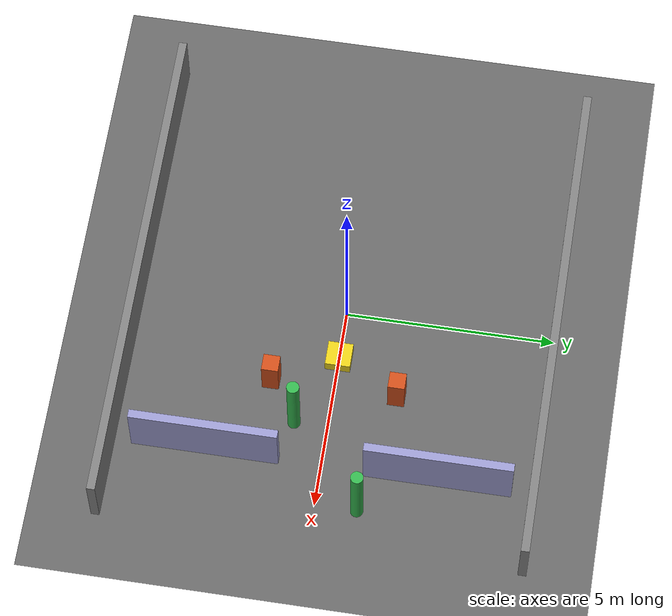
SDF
<?xml version="1.0" ?>
<sdf version="1.8">
  <world name="obstacle_world">

    <!-- Physics -->
    <physics name="1ms" type="ignored">
      <max_step_size>0.001</max_step_size>
      <real_time_factor>1.0</real_time_factor>
    </physics>

    <!-- Required Ignition plugins -->
    <plugin filename="ignition-gazebo-physics-system"
            name="ignition::gazebo::systems::Physics"/>
    <plugin filename="ignition-gazebo-user-commands-system"
            name="ignition::gazebo::systems::UserCommands"/>
    <plugin filename="ignition-gazebo-scene-broadcaster-system"
            name="ignition::gazebo::systems::SceneBroadcaster"/>
    <plugin filename="ignition-gazebo-sensors-system"
            name="ignition::gazebo::systems::Sensors">
      <render_engine>ogre2</render_engine>
    </plugin>

    <!-- Lighting -->
    <light type="directional" name="sun">
      <cast_shadows>true</cast_shadows>
      <pose>0 0 10 0 0 0</pose>
      <diffuse>0.8 0.8 0.8 1</diffuse>
      <specular>0.2 0.2 0.2 1</specular>
      <direction>-0.5 0.1 -0.9</direction>
    </light>

    <!-- Ground plane -->
    <model name="ground_plane">
      <static>true</static>
      <link name="link">
        <collision name="collision">
          <geometry>
            <plane>
              <normal>0 0 1</normal>
              <size>20 20</size>
            </plane>
          </geometry>
          <surface>
            <friction>
              <ode>
                <mu>1.0</mu>
                <mu2>1.0</mu2>
              </ode>
            </friction>
          </surface>
        </collision>
        <visual name="visual">
          <geometry>
            <plane>
              <normal>0 0 1</normal>
              <size>20 20</size>
            </plane>
          </geometry>
          <material>
            <ambient>0.4 0.4 0.4 1</ambient>
            <diffuse>0.4 0.4 0.4 1</diffuse>
          </material>
        </visual>
      </link>
    </model>

    <!-- ==================== OBSTACLES ==================== -->

    <!-- Box 1: 前方 2m 处，宽走廊右墙 -->
    <model name="box_1">
      <static>true</static>
      <pose>2.0 1.5 0.5 0 0 0</pose>
      <link name="link">
        <collision name="collision">
          <geometry><box><size>0.4 0.4 1.0</size></box></geometry>
        </collision>
        <visual name="visual">
          <geometry><box><size>0.4 0.4 1.0</size></box></geometry>
          <material>
            <ambient>0.8 0.3 0.1 1</ambient>
            <diffuse>0.8 0.3 0.1 1</diffuse>
          </material>
        </visual>
      </link>
    </model>

    <!-- Box 2: 前方 2m 处，走廊左侧 -->
    <model name="box_2">
      <static>true</static>
      <pose>2.0 -1.5 0.5 0 0 0</pose>
      <link name="link">
        <collision name="collision">
          <geometry><box><size>0.4 0.4 1.0</size></box></geometry>
        </collision>
        <visual name="visual">
          <geometry><box><size>0.4 0.4 1.0</size></box></geometry>
          <material>
            <ambient>0.8 0.3 0.1 1</ambient>
            <diffuse>0.8 0.3 0.1 1</diffuse>
          </material>
        </visual>
      </link>
    </model>

    <!-- Wall: 前方 4m 处横墙，中间留 1m 缺口 -->
    <model name="wall_front_left">
      <static>true</static>
      <pose>4.0 2.75 0.75 0 0 0</pose>
      <link name="link">
        <collision name="collision">
          <geometry><box><size>0.2 3.5 1.5</size></box></geometry>
        </collision>
        <visual name="visual">
          <geometry><box><size>0.2 3.5 1.5</size></box></geometry>
          <material>
            <ambient>0.6 0.6 0.8 1</ambient>
            <diffuse>0.6 0.6 0.8 1</diffuse>
          </material>
        </visual>
      </link>
    </model>

    <model name="wall_front_right">
      <static>true</static>
      <pose>4.0 -2.75 0.75 0 0 0</pose>
      <link name="link">
        <collision name="collision">
          <geometry><box><size>0.2 3.5 1.5</size></box></geometry>
        </collision>
        <visual name="visual">
          <geometry><box><size>0.2 3.5 1.5</size></box></geometry>
          <material>
            <ambient>0.6 0.6 0.8 1</ambient>
            <diffuse>0.6 0.6 0.8 1</diffuse>
          </material>
        </visual>
      </link>
    </model>

    <!-- Cylinder pillar: 右前方 3m -->
    <model name="pillar_1">
      <static>true</static>
      <pose>3.0 -0.8 1.0 0 0 0</pose>
      <link name="link">
        <collision name="collision">
          <geometry><cylinder><radius>0.15</radius><length>2.0</length></cylinder></geometry>
        </collision>
        <visual name="visual">
          <geometry><cylinder><radius>0.15</radius><length>2.0</length></cylinder></geometry>
          <material>
            <ambient>0.2 0.7 0.3 1</ambient>
            <diffuse>0.2 0.7 0.3 1</diffuse>
          </material>
        </visual>
      </link>
    </model>

    <!-- Cylinder pillar: 左前方 5m -->
    <model name="pillar_2">
      <static>true</static>
      <pose>5.0 1.0 1.0 0 0 0</pose>
      <link name="link">
        <collision name="collision">
          <geometry><cylinder><radius>0.15</radius><length>2.0</length></cylinder></geometry>
        </collision>
        <visual name="visual">
          <geometry><cylinder><radius>0.15</radius><length>2.0</length></cylinder></geometry>
          <material>
            <ambient>0.2 0.7 0.3 1</ambient>
            <diffuse>0.2 0.7 0.3 1</diffuse>
          </material>
        </visual>
      </link>
    </model>

    <!-- Low obstacle: 近处低矮障碍，测试避障 -->
    <model name="low_box">
      <static>true</static>
      <pose>1.2 0.0 0.15 0 0 0</pose>
      <link name="link">
        <collision name="collision">
          <geometry><box><size>0.6 0.6 0.3</size></box></geometry>
        </collision>
        <visual name="visual">
          <geometry><box><size>0.6 0.6 0.3</size></box></geometry>
          <material>
            <ambient>0.9 0.8 0.1 1</ambient>
            <diffuse>0.9 0.8 0.1 1</diffuse>
          </material>
        </visual>
      </link>
    </model>

    <!-- Side wall left -->
    <model name="wall_left">
      <static>true</static>
      <pose>0.0 5.0 0.75 0 0 0</pose>
      <link name="link">
        <collision name="collision">
          <geometry><box><size>12.0 0.2 1.5</size></box></geometry>
        </collision>
        <visual name="visual">
          <geometry><box><size>12.0 0.2 1.5</size></box></geometry>
          <material>
            <ambient>0.5 0.5 0.5 1</ambient>
            <diffuse>0.5 0.5 0.5 1</diffuse>
          </material>
        </visual>
      </link>
    </model>

    <!-- Side wall right -->
    <model name="wall_right">
      <static>true</static>
      <pose>0.0 -5.0 0.75 0 0 0</pose>
      <link name="link">
        <collision name="collision">
          <geometry><box><size>12.0 0.2 1.5</size></box></geometry>
        </collision>
        <visual name="visual">
          <geometry><box><size>12.0 0.2 1.5</size></box></geometry>
          <material>
            <ambient>0.5 0.5 0.5 1</ambient>
            <diffuse>0.5 0.5 0.5 1</diffuse>
          </material>
        </visual>
      </link>
    </model>

  </world>
</sdf>
